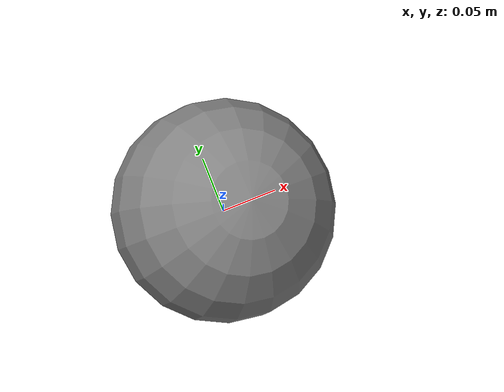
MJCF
<mujoco model="eulerseq_test">
                <compiler angle="radian" eulerseq="ZYX"/>
                <worldbody>
                    <body name="b" euler="0.3 0.2 0.1">
                        <geom type="sphere" size="0.1" mass="1.0"/>
                    </body>
                </worldbody>
            </mujoco>
